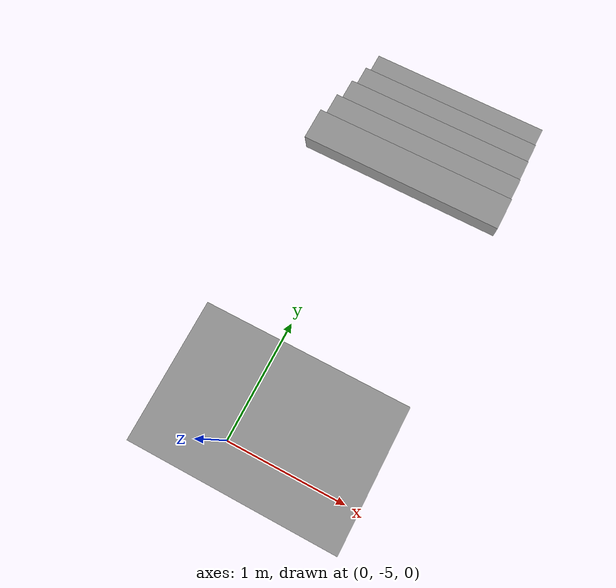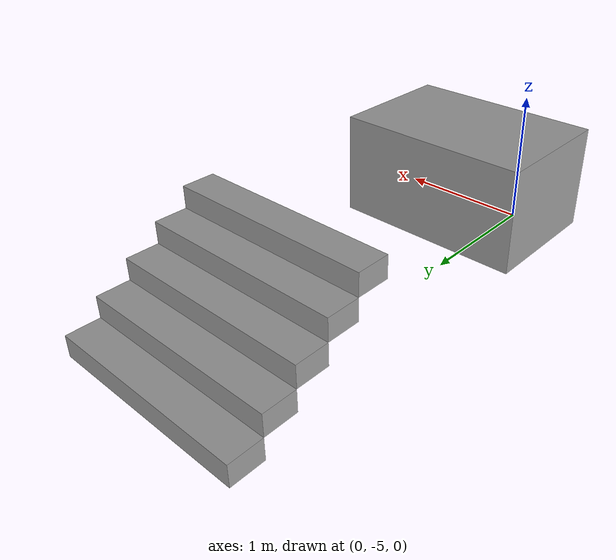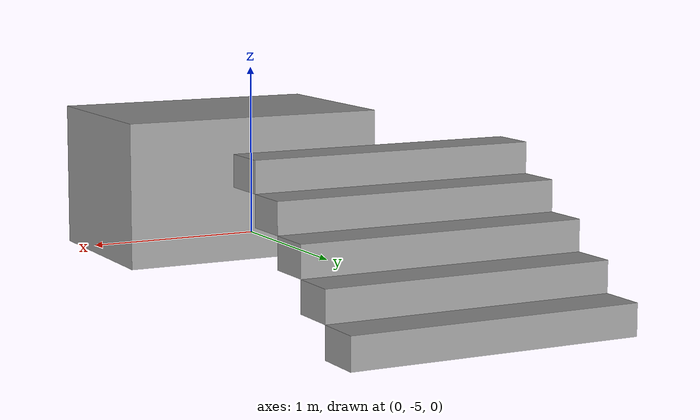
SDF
<?xml version='1.0'?>
<sdf version='1.6'>
  <model name='stairs'>
    <pose frame=''>0.33 -3.445 0 0 -0 0</pose>
    <link name='Stairs_1'>
      <visual name='Stairs_1_Visual_0'>
        <pose frame=''>-0 1.655 0.08 0 -0 0</pose>
        <geometry>
          <box>
            <size>1.5 0.24 0.16</size>
          </box>
        </geometry>
        <material>
          <script>
            <uri>file://media/materials/scripts/gazebo.material</uri>
            <name>Gazebo/Grey</name>
          </script>
          <ambient>1 1 1 1</ambient>
        </material>
        <meta>
          <layer>0</layer>
        </meta>
      </visual>
      <collision name='Stairs_1_Collision_0'>
        <geometry>
          <box>
            <size>1.5 0.24 0.16</size>
          </box>
        </geometry>
        <pose frame=''>-0 1.655 0.08 0 -0 0</pose>
      </collision>
      <visual name='Stairs_1_Visual_1'>
        <pose frame=''>-0 1.415 0.24 0 -0 0</pose>
        <geometry>
          <box>
            <size>1.5 0.24 0.16</size>
          </box>
        </geometry>
        <material>
          <script>
            <uri>file://media/materials/scripts/gazebo.material</uri>
            <name>Gazebo/Grey</name>
          </script>
          <ambient>1 1 1 1</ambient>
        </material>
        <meta>
          <layer>0</layer>
        </meta>
      </visual>
      <collision name='Stairs_1_Collision_1'>
        <geometry>
          <box>
            <size>1.5 0.24 0.16</size>
          </box>
        </geometry>
        <pose frame=''>-0 1.415 0.24 0 -0 0</pose>
      </collision>
      <visual name='Stairs_1_Visual_2'>
        <pose frame=''>-0 1.175 0.4 0 -0 0</pose>
        <geometry>
          <box>
            <size>1.5 0.24 0.16</size>
          </box>
        </geometry>
        <material>
          <script>
            <uri>file://media/materials/scripts/gazebo.material</uri>
            <name>Gazebo/Grey</name>
          </script>
          <ambient>1 1 1 1</ambient>
        </material>
        <meta>
          <layer>0</layer>
        </meta>
      </visual>
      <collision name='Stairs_1_Collision_2'>
        <geometry>
          <box>
            <size>1.5 0.24 0.16</size>
          </box>
        </geometry>
        <pose frame=''>-0 1.175 0.4 0 -0 0</pose>
      </collision>
      <visual name='Stairs_1_Visual_3'>
        <pose frame=''>-0 0.935 0.56 0 -0 0</pose>
        <geometry>
          <box>
            <size>1.5 0.24 0.16</size>
          </box>
        </geometry>
        <material>
          <script>
            <uri>file://media/materials/scripts/gazebo.material</uri>
            <name>Gazebo/Grey</name>
          </script>
          <ambient>1 1 1 1</ambient>
        </material>
        <meta>
          <layer>0</layer>
        </meta>
      </visual>
      <collision name='Stairs_1_Collision_3'>
        <geometry>
          <box>
            <size>1.5 0.24 0.16</size>
          </box>
        </geometry>
        <pose frame=''>-0 0.935 0.56 0 -0 0</pose>
      </collision>
      <visual name='Stairs_1_Visual_4'>
        <pose frame=''>-0 0.695 0.72 0 -0 0</pose>
        <geometry>
          <box>
            <size>1.5 0.24 0.16</size>
          </box>
        </geometry>
        <material>
          <script>
            <uri>file://media/materials/scripts/gazebo.material</uri>
            <name>Gazebo/Grey</name>
          </script>
          <ambient>1 1 1 1</ambient>
        </material>
        <meta>
          <layer>0</layer>
        </meta>
      </visual>
      <collision name='Stairs_1_Collision_4'>
        <geometry>
          <box>
            <size>1.5 0.24 0.16</size>
          </box>
        </geometry>
        <pose frame=''>-0 0.695 0.72 0 -0 0</pose>
      </collision>
    </link>
    <link name='Stairs_3'>
      <visual name='Stairs_3_Visual_0'>
        <pose frame=''>-0 -1.275 0.4 0 -0 0</pose>
        <geometry>
          <box>
            <size>1.5 1 0.8</size>
          </box>
        </geometry>
        <material>
          <script>
            <uri>file://media/materials/scripts/gazebo.material</uri>
            <name>Gazebo/Grey</name>
          </script>
          <ambient>1 1 1 1</ambient>
        </material>
        <meta>
          <layer>0</layer>
        </meta>
      </visual>
      <collision name='Stairs_3_Collision_0'>
        <geometry>
          <box>
            <size>1.5 1 0.8</size>
          </box>
        </geometry>
        <pose frame=''>-0 -1.275 0.4 0 -0 0</pose>
      </collision>
    </link>
    <static>1</static>
  </model>
</sdf>
